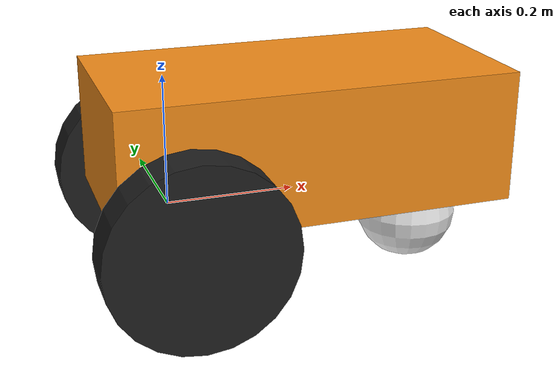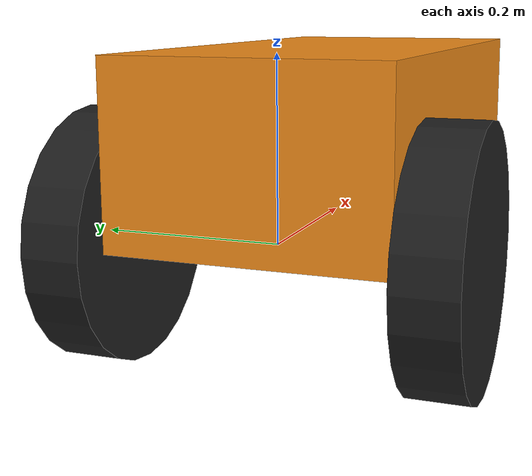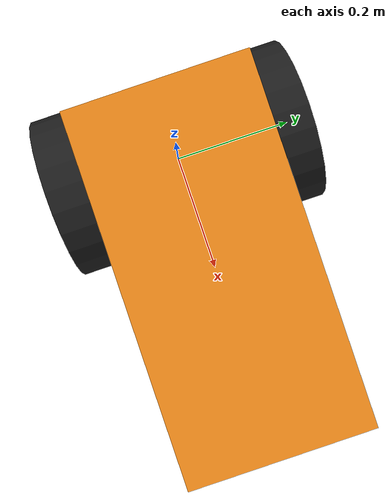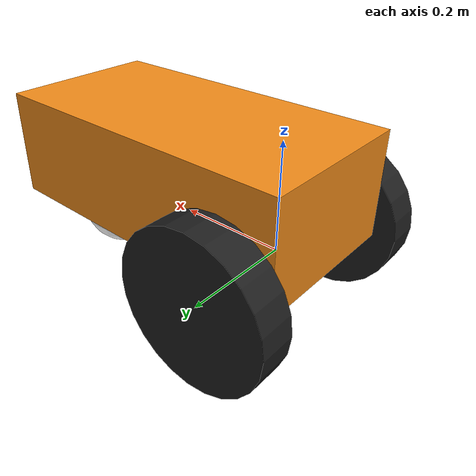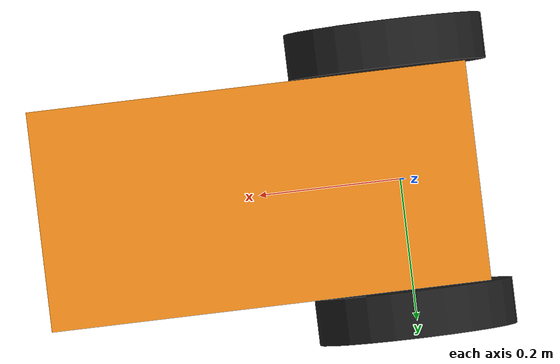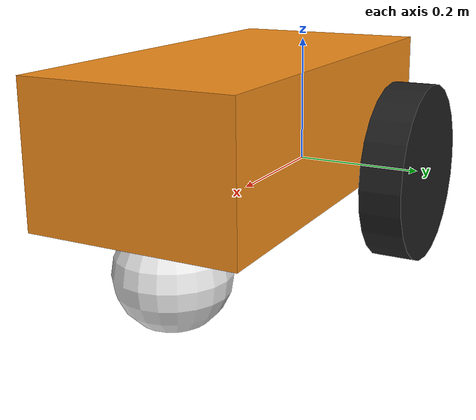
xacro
<?xml version="1.0"?>
<robot xmlns:xacro="http://www.ros.org/wiki/xacro"  name="robot">
    <xacro:arg name="prefix" default="" />

    <xacro:include filename="ros2_control.xacro" />

    <xacro:include filename="diffbot_description.xacro" />

    <!-- Import Rviz colors -->
    <xacro:include filename="diffbot.materials.xacro" />

    <!-- to make Prefixes work -->

</robot>

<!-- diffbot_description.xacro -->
<robot xmlns:xacro="http://www.ros.org/wiki/xacro">

    <!-- Constants for robot dimensions -->
    <xacro:property name="PI" value="3.1415926535897931"/>
    <xacro:property name="base_mass" value="12.0" /> <!-- value for base mass -->
    <xacro:property name="base_width" value="0.6" /> <!--size in X -->
    <xacro:property name="base_length" value="0.3" /> <!--size in Y -->
    <xacro:property name="base_height" value="0.2" />
    <xacro:property name="wheelbase" value="0.375" />
    <xacro:property name="wheel_mass" value="1.0" /> <!-- wheel mass -->
    <xacro:property name="wheel_len" value="0.065" />
    <xacro:property name="wheel_radius" value="0.14" />
    <xacro:property name="caster_wheel_mass" value="0.1" /> <!-- value for caster wheel mass -->
    <xacro:property name="caster_wheel_radius" value="0.08" />
    <xacro:property name="z_offset" value="-${base_height/2}" /> <!-- Space btw top of beam and the each joint -->
    <xacro:property name="x_body_offset" value="0.20" /> <!-- howfar wheels are infront of middle of Chassie -->

    <!-- Base Link -->
    <link name="base_link">

    </link>

    <!-- Chassis Link -->
    <joint name="chassis_joint" type="fixed">
      <parent link="base_link"/>
      <child link="chassis"/>
      <origin xyz="${x_body_offset} 0.0 ${base_height/2}"/>
    </joint>

    <link name="chassis">
      <collision>
        <origin xyz="0 0 0" rpy="0 0 0"/>
        <geometry>
          <box size="${base_width} ${base_length} ${base_height}"/>
        </geometry>
      </collision>

      <visual>
        <origin xyz="0 0 0" rpy="0 0 0"/>
        <geometry>
          <box size="${base_width} ${base_length} ${base_height}"/>
        </geometry>
        <material name="orange"/>
      </visual>

      <inertial>
        <origin xyz="0 0 0" rpy="0 0 0"/>
        <mass value="${base_mass}"/>
        <inertia
          ixx="${base_mass / 12.0 * (base_length*base_length + base_height*base_height)}" ixy="0.0" ixz="0.0"
          iyy="${base_mass / 12.0 * (base_height*base_height + base_width*base_width)}" iyz="0.0"
          izz="${base_mass / 12.0 * (base_width*base_width + base_length*base_length)}"/>
      </inertial>
    </link>

    <gazebo reference="chassis">
      <material>Gazebo/Orange</material>
    </gazebo>

    <!-- left wheel Link -->
    <joint name="left_wheel_joint" type="continuous">
      <parent link="base_link"/>
      <child link="left_wheel"/>
      <origin xyz="0.0 ${wheelbase/2} 0.0" rpy="${PI/2} 0 0"/>
      <axis xyz="0 0 -1"/>
      <dynamics damping="0.2"/>
    </joint>

    <link name="left_wheel">
      <collision>
        <origin xyz="0 0 0" rpy="0 0 0"/>
        <geometry>
          <sphere radius="${wheel_radius}"/>
        </geometry>
      </collision>

      <visual>
        <origin xyz="0 0 0" rpy="0 0 0"/>
        <geometry>
          <cylinder length="${wheel_len}" radius="${wheel_radius}"/>
        </geometry>
        <material name="black"/>
      </visual>

      <inertial>
        <origin xyz="0 0 0" rpy="0 0 0"/>
        <mass value="${wheel_mass}"/>
        <inertia
          ixx="${wheel_mass / 12.0 * (3*wheel_radius*wheel_radius + wheel_len*wheel_len)}" ixy="0.0" ixz="0.0"
          iyy="${wheel_mass / 12.0 * (3*wheel_radius*wheel_radius + wheel_len*wheel_len)}" iyz="0.0"
          izz="${wheel_mass / 2.0 * wheel_radius*wheel_radius}"/>
        </inertial>
      </link>

        <gazebo reference="left_wheel">
          <material>Gazebo/Black</material>
        </gazebo>

      <joint name="right_wheel_joint" type="continuous">
        <parent link="base_link"/>
        <child link="right_wheel"/>
        <origin xyz="0.0 -${wheelbase/2} 0.0" rpy="${PI/2} 0 0"/>
        <axis xyz="0 0 -1"/>
        <dynamics damping="0.2"/>
      </joint>

      <!-- right wheel Link -->
      <link name="right_wheel">
        <collision>
          <origin xyz="0 0 0" rpy="0 0 0"/>
          <geometry>
            <sphere radius="${wheel_radius}"/>
          </geometry>
        </collision>

        <visual>
          <origin xyz="0 0 0" rpy="0 0 0"/>
          <geometry>
            <cylinder length="${wheel_len}" radius="${wheel_radius}"/>
          </geometry>
          <material name="black"/>
        </visual>

        <inertial>
          <origin xyz="0 0 0" rpy="0 0 0"/>
          <mass value="${wheel_mass}"/>
          <inertia
            ixx="${wheel_mass / 12.0 * (3*wheel_radius*wheel_radius + wheel_len*wheel_len)}" ixy="0.0" ixz="0.0"
            iyy="${wheel_mass / 12.0 * (3*wheel_radius*wheel_radius + wheel_len*wheel_len)}" iyz="0.0"
            izz="${wheel_mass / 2.0 * wheel_radius*wheel_radius}"/>
          </inertial>
        </link>

        <gazebo reference="right_wheel">
          <material>Gazebo/Black</material>
        </gazebo>

      <joint name="caster_frontal_wheel_joint" type="fixed">
        <parent link="base_link"/>
        <child link="caster_frontal_wheel"/>
        <origin xyz="${x_body_offset * 2} 0 ${caster_wheel_radius - wheel_radius}" rpy="0 0 0"/>
      </joint>

      <!-- caster front wheel Link -->
      <link name="caster_frontal_wheel">
        <collision>
          <origin xyz="0 0 0" rpy="0 0 0"/>
          <geometry>
            <sphere radius="${caster_wheel_radius}"/>
          </geometry>
        </collision>

        <visual>
          <origin xyz="0 0 0" rpy="0 0 0"/>
          <geometry>
            <sphere radius="${caster_wheel_radius}"/>
          </geometry>
          <material name="white"/>
        </visual>

        <inertial>
          <origin xyz="0 0 0" rpy="0 0 0"/>
          <mass value="${caster_wheel_mass}"/>
          <inertia
            ixx="${caster_wheel_mass * 0.4 * (caster_wheel_radius * caster_wheel_radius)}" ixy="0.0" ixz="0.0"
            iyy="${caster_wheel_mass * 0.4 * (caster_wheel_radius * caster_wheel_radius)}" iyz="0.0"
            izz="${caster_wheel_mass * 0.4 * (caster_wheel_radius * caster_wheel_radius)}"/>
          </inertial>
        </link>

        <gazebo reference="caster_frontal_wheel">
          <material>Gazebo/White</material>
          <mu1 value="0.001"/>
          <mu2 value="0.001"/>
        </gazebo>

</robot>
